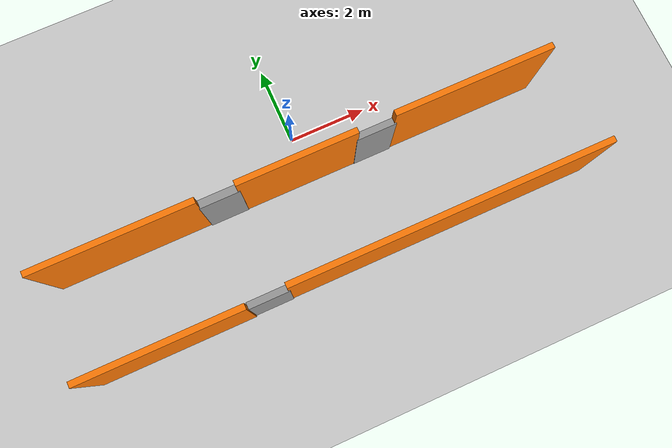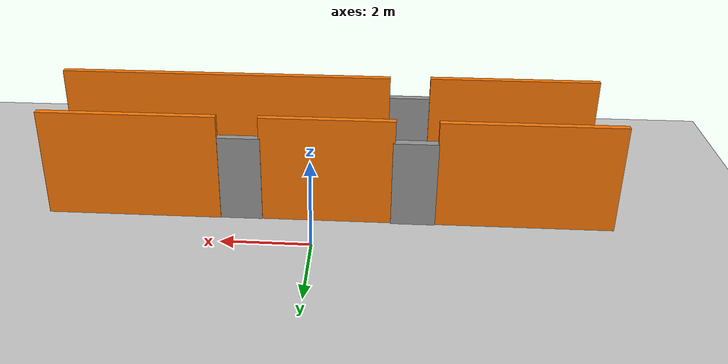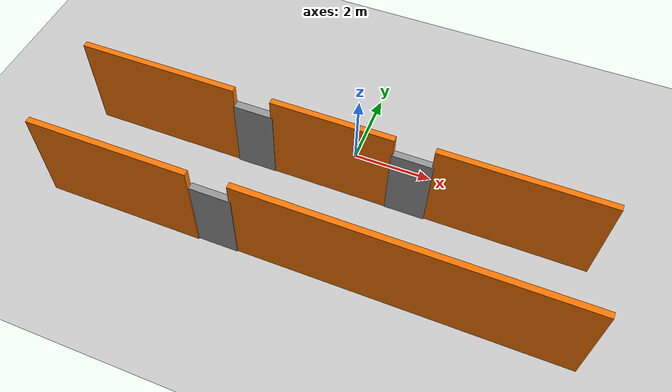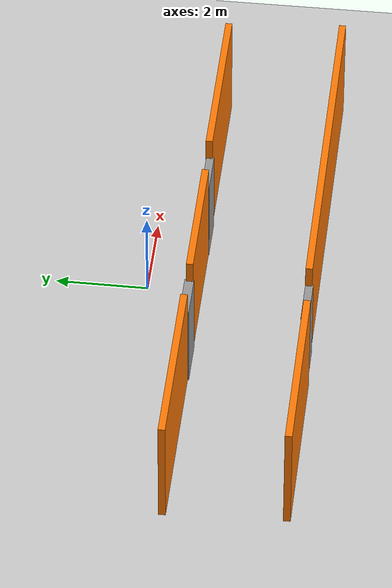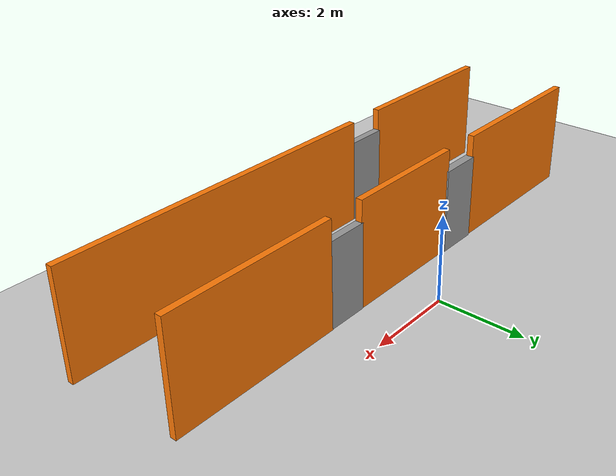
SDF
<sdf version="1.6">
 <world name="default">
  <light name="sun" type="directional">
   <pose>0 0 10 0 -0 0</pose>
   <diffuse>0.8 0.8 0.8 1</diffuse>
   <specular>0.2 0.2 0.2 1</specular>
   <attenuation>
    <range>1000</range>
    <constant>0.9</constant>
    <linear>0.01</linear>
    <quadratic>0.001</quadratic>
   </attenuation>
   <direction>-0.5 0.1 -0.9</direction>
  </light>
  <model name="ground_plane">
   <static>1</static>
   <link name="link">
    <collision name="collision">
     <geometry><plane><normal>0 0 1</normal><size>100 100</size></plane></geometry>
     <surface>
      <contact><collide_bitmask>65535</collide_bitmask></contact>
      <friction><ode><mu>100</mu><mu2>50</mu2></ode></friction>
     </surface>
    </collision>
    <visual name="visual">
     <cast_shadows>0</cast_shadows>
     <geometry><plane><normal>0 0 1</normal><size>100 100</size></plane></geometry>
     <material>
      <script><uri>file://media/materials/scripts/gazebo.material</uri><name>Gazebo/Grey</name></script>
     </material>
    </visual>
   </link>
  </model>
  <gravity>0 0 -9.8</gravity>
  <magnetic_field>6e-06 2.3e-05 -4.2e-05</magnetic_field>
  <atmosphere type="adiabatic"/>
  <physics name="default_physics" default="0" type="ode">
   <max_step_size>0.001</max_step_size>
   <real_time_factor>1</real_time_factor>
   <real_time_update_rate>1000</real_time_update_rate>
  </physics>
  <scene><ambient>0.4 0.4 0.4 1</ambient><background>0.7 0.7 0.7 1</background><shadows>1</shadows></scene>
  <audio><device>default</device></audio>
  <spherical_coordinates>
   <surface_model>EARTH_WGS84</surface_model>
   <latitude_deg>0</latitude_deg>
   <longitude_deg>0</longitude_deg>
   <elevation>0</elevation>
   <heading_deg>0</heading_deg>
  </spherical_coordinates>
  <model name="corridor_nosymetric">
   <pose>-0.16 -2.405 0 0 -0 0</pose>
   <link name="Door_0">
    <collision name="Door_0_Collision">
     <geometry><box><size>1 0.2 2</size></box></geometry>
     <pose>0 0 1 0 -0 0</pose>
    </collision>
    <visual name="Door_0_Visual">
     <pose>0 0 1 0 -0 0</pose>
     <geometry><box><size>1 0.2 2</size></box></geometry>
     <material>
      <script><uri>file://media/materials/scripts/gazebo.material</uri><name>Gazebo/Grey</name></script>
     </material>
    </visual>
    <pose>-2.055 1.285 0 0 -0 0</pose>
   </link>
   <link name="Door_1">
    <collision name="Door_1_Collision">
     <geometry><box><size>1 0.17 2</size></box></geometry>
     <pose>0 0 1 0 -0 0</pose>
    </collision>
    <visual name="Door_1_Visual">
     <pose>0 0 1 0 -0 0</pose>
     <geometry><box><size>1 0.17 2</size></box></geometry>
     <material>
      <script><uri>file://media/materials/scripts/gazebo.material</uri><name>Gazebo/Grey</name></script>
     </material>
    </visual>
    <pose>1.86 1.275 0 0 -0 0</pose>
   </link>
   <link name="Door_2">
    <collision name="Door_2_Collision">
     <geometry><box><size>1 0.17 2</size></box></geometry>
     <pose>0 0 1 0 -0 0</pose>
    </collision>
    <visual name="Door_2_Visual">
     <pose>0 0 1 0 -0 0</pose>
     <geometry><box><size>1 0.17 2</size></box></geometry>
     <material>
      <script><uri>file://media/materials/scripts/gazebo.material</uri><name>Gazebo/Grey</name></script>
     </material>
    </visual>
    <pose>-1.92 -1.255 0 0 -0 0</pose>
   </link>
   <link name="Wall_0">
    <collision name="Wall_0_Collision">
     <geometry><box><size>4 0.15 2.5</size></box></geometry>
     <pose>0 0 1.25 0 -0 0</pose>
    </collision>
    <visual name="Wall_0_Visual">
     <pose>0 0 1.25 0 -0 0</pose>
     <geometry><box><size>4 0.15 2.5</size></box></geometry>
     <material>
      <script><uri>file://media/materials/scripts/gazebo.material</uri><name>Gazebo/Grey</name></script>
      <ambient>0.996078 0.47451 0.0196078 1</ambient>
     </material>
     <meta><layer>0</layer></meta>
    </visual>
    <pose>-4.535 1.285 0 0 -0 0</pose>
   </link>
   <link name="Wall_11">
    <collision name="Wall_11_Collision">
     <geometry><box><size>4 0.15 2.5</size></box></geometry>
     <pose>0 0 1.25 0 -0 0</pose>
    </collision>
    <visual name="Wall_11_Visual">
     <pose>0 0 1.25 0 -0 0</pose>
     <geometry><box><size>4 0.15 2.5</size></box></geometry>
     <material>
      <script><uri>file://media/materials/scripts/gazebo.material</uri><name>Gazebo/Grey</name></script>
      <ambient>0.996078 0.47451 0.0196078 1</ambient>
     </material>
     <meta><layer>0</layer></meta>
    </visual>
    <pose>4.315 1.295 0 0 -0 0</pose>
   </link>
   <link name="Wall_13">
    <collision name="Wall_13_Collision">
     <geometry><box><size>8 0.15 2.5</size></box></geometry>
     <pose>0 0 1.25 0 -0 0</pose>
    </collision>
    <visual name="Wall_13_Visual">
     <pose>0 0 1.25 0 -0 0</pose>
     <geometry><box><size>8 0.15 2.5</size></box></geometry>
     <material>
      <script><uri>file://media/materials/scripts/gazebo.material</uri><name>Gazebo/Grey</name></script>
      <ambient>0.996078 0.47451 0.0196078 1</ambient>
     </material>
     <meta><layer>0</layer></meta>
    </visual>
    <pose>2.535 -1.245 0 0 -0 3.14159</pose>
   </link>
   <link name="Wall_18">
    <collision name="Wall_18_Collision">
     <geometry><box><size>4 0.15 2.5</size></box></geometry>
     <pose>0 0 1.25 0 -0 0</pose>
    </collision>
    <visual name="Wall_18_Visual">
     <pose>0 0 1.25 0 -0 0</pose>
     <geometry><box><size>4 0.15 2.5</size></box></geometry>
     <material>
      <script><uri>file://media/materials/scripts/gazebo.material</uri><name>Gazebo/Grey</name></script>
      <ambient>0.996078 0.47451 0.0196078 1</ambient>
     </material>
     <meta><layer>0</layer></meta>
    </visual>
    <pose>-4.425 -1.295 0 0 -0 3.14159</pose>
   </link>
   <link name="Wall_8">
    <collision name="Wall_8_Collision">
     <geometry><box><size>3 0.15 2.5</size></box></geometry>
     <pose>0 0 1.25 0 -0 0</pose>
    </collision>
    <visual name="Wall_8_Visual">
     <pose>0 0 1.25 0 -0 0</pose>
     <geometry><box><size>3 0.15 2.5</size></box></geometry>
     <material>
      <script><uri>file://media/materials/scripts/gazebo.material</uri><name>Gazebo/Grey</name></script>
      <ambient>0.996078 0.47451 0.0196078 1</ambient>
     </material>
     <meta><layer>0</layer></meta>
    </visual>
    <pose>-0.105 1.275 0 0 -0 0</pose>
   </link>
   <static>1</static>
  </model>
 </world>
</sdf>
